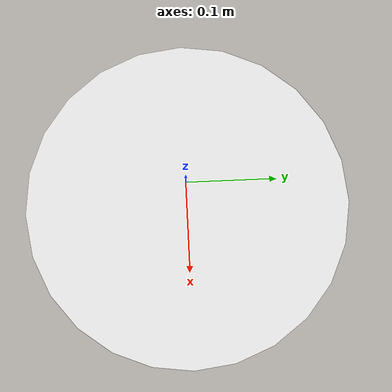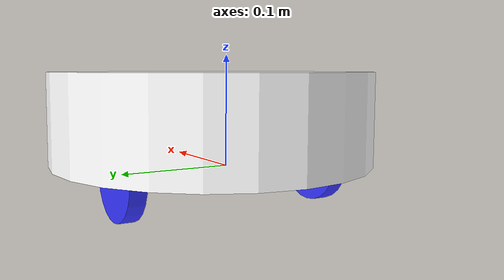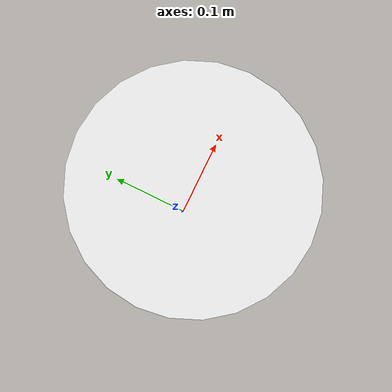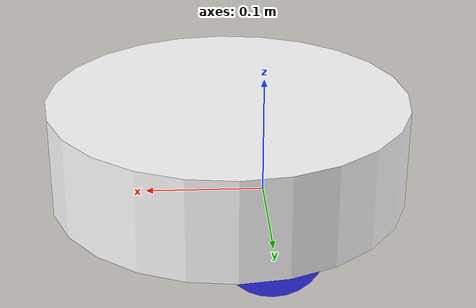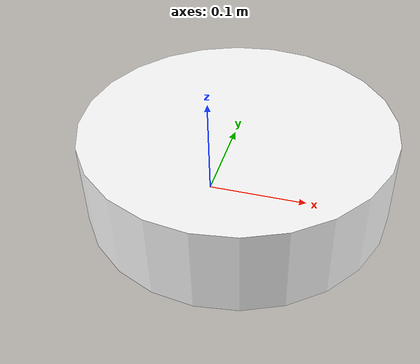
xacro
<?xml version="1.0"?>
<robot xmlns:xacro="http://www.ros.org/wiki/xacro"  >

 <xacro:include filename="inertial_macros.xacro"/>

  <material name="white">
    <color rgba="1 1 1 1"/>
  </material>

  <material name="orange">
    <color rgba="1.0 0.4 0.0 1.0"/>
  </material>

 <material name="blue">
    <color rgba= "0.2 0.2 1 1"/>
 </material>

 <material name="black">
        <color rgba="0 0 0 1"/>
 </material>

 <material name="red">
        <color rgba="1 0 0 1"/>
 </material>

  <!-- BASE LINK-->

<link name="base_link">
  </link>

  <!-- BASE_FOOTPRINT LINK -->

    <joint name="base_footprint_joint" type="fixed">
        <parent link="base_link"/>
        <child link="base_footprint"/>
        <origin xyz="0 0 0" rpy="0 0 0"/>
    </joint>

    <link name="base_footprint">
    </link>

     <!-- CHASSISS LINK-->

<joint name= "chassis_joint" type="fixed">
    <parent link="base_link"/>
    <child link="chassis"/>
    <origin  xyz="0.03 0 0" />
</joint>

<link name="chassis">
    <visual>
     <origin xyz="0.0 0 0.0425"/>
      <geometry>
        <cylinder length="0.085" radius="0.150"/>
      </geometry>
      <material name="white"/>
    </visual>

    <collision>
     <origin xyz="0.0 0 0.0425"/>
      <geometry>
        <cylinder length="0.085" radius="0.150"/>
      </geometry>
    </collision>
    <xacro:inertial_cylinder mass="0.5" length="0.085" radius="0.150">
            <origin xyz="0 0 0.0425" rpy="0 0 0"/>
        </xacro:inertial_cylinder>
    </link>

    <gazebo reference="chassis">
        <material>Gazebo/White</material>
    </gazebo>
     <!-- LEFT WHEEL LINK-->

     <joint name="left_wheel_joint" type="continuous">
            <parent link="base_link"/>
            <child link="left_wheel"/>
            <origin xyz="0 0.1 0" rpy="-${pi/2} 0 0"/>
            <axis xyz="0 0 1"/>
     </joint>

     <link name="left_wheel">
      <visual>
       <geometry>
        <cylinder length="0.015" radius="0.04"/>
       </geometry>
      <material name="blue"/>
      </visual>

      <collision>
       <geometry>
        <cylinder length="0.015" radius="0.04"/>
       </geometry>

      </collision>

       <xacro:inertial_cylinder mass="0.1" length="0.015" radius="0.04">
            <origin xyz="0 0 0" rpy="0 0 0"/>
        </xacro:inertial_cylinder>

     </link>

         <gazebo reference="left_wheel">
            <material>Gazebo/Blue</material>
         </gazebo>
<!-- right WHEEL LINK-->

     <joint name="right_wheel_joint" type="continuous">
            <parent link="base_link"/>
            <child link="right_wheel"/>
            <origin xyz="0 -0.1 0" rpy="${pi/2} 0 0"/>
            <axis xyz="0 0 -1"/>
     </joint>

     <link name="right_wheel">
      <visual>
       <geometry>
        <cylinder length="0.015" radius="0.04"/>
       </geometry>
      <material name="blue"/>
      </visual>

      <collision>
       <geometry>
        <cylinder length="0.015" radius="0.04"/>
       </geometry>
      </collision>
       <xacro:inertial_cylinder mass="0.1" length="0.015" radius="0.04">
            <origin xyz="0 0 0" rpy="0 0 0"/>
        </xacro:inertial_cylinder>

     </link>

      <gazebo reference="right_wheel">
        <material>Gazebo/Blue</material>
     </gazebo>

        <!-- CASTER WHEEL LINK -->

    <joint name="caster_wheel_joint" type="fixed">
        <parent link="chassis"/>
        <child link="caster_wheel"/>
        <origin xyz="0.11 0 0"/>
    </joint>

    <link name="caster_wheel">
        <visual>
            <geometry>
                <sphere radius="0.03"/>
            </geometry>
            <material name="black"/>
        </visual>
        <collision>
            <geometry>
                <sphere radius="0.03"/>
            </geometry>
        </collision>
        <xacro:inertial_sphere mass="0.1" radius="0.03">
            <origin xyz="0 0 0" rpy="0 0 0"/>
        </xacro:inertial_sphere>
    </link>

      <gazebo reference="caster_wheel">
        <material>Gazebo/Black</material>
        <mu1 value="0.001" />
        <mu2 value="0.001" />

      </gazebo>

</robot>

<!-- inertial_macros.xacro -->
<robot xmlns:xacro="http://www.ros.org/wiki/xacro" >

    <!-- Specify some standard inertial calculations https://en.wikipedia.org/wiki/List_of_moments_of_inertia -->
    <!-- These make use of xacro's mathematical functionality -->

    <xacro:macro name="inertial_sphere" params="mass radius *origin">
        <inertial>
            <xacro:insert_block name="origin"/>
            <mass value="${mass}" />
            <inertia ixx="${(2/5) * mass * (radius*radius)}" ixy="0.0" ixz="0.0"
                    iyy="${(2/5) * mass * (radius*radius)}" iyz="0.0"
                    izz="${(2/5) * mass * (radius*radius)}" />
        </inertial>
    </xacro:macro>

    <xacro:macro name="inertial_box" params="mass x y z *origin">
        <inertial>
            <xacro:insert_block name="origin"/>
            <mass value="${mass}" />
            <inertia ixx="${(1/12) * mass * (y*y+z*z)}" ixy="0.0" ixz="0.0"
                    iyy="${(1/12) * mass * (x*x+z*z)}" iyz="0.0"
                    izz="${(1/12) * mass * (x*x+y*y)}" />
        </inertial>
    </xacro:macro>

    <xacro:macro name="inertial_cylinder" params="mass length radius *origin">
        <inertial>
            <xacro:insert_block name="origin"/>
            <mass value="${mass}" />
            <inertia ixx="${(1/12) * mass * (3*radius*radius + length*length)}" ixy="0.0" ixz="0.0"
                    iyy="${(1/12) * mass * (3*radius*radius + length*length)}" iyz="0.0"
                    izz="${(1/2) * mass * (radius*radius)}" />
        </inertial>
    </xacro:macro>

    </robot>
